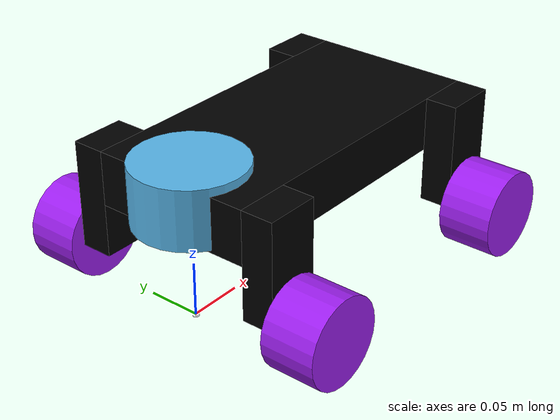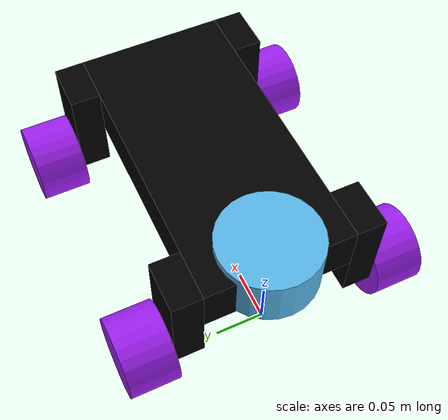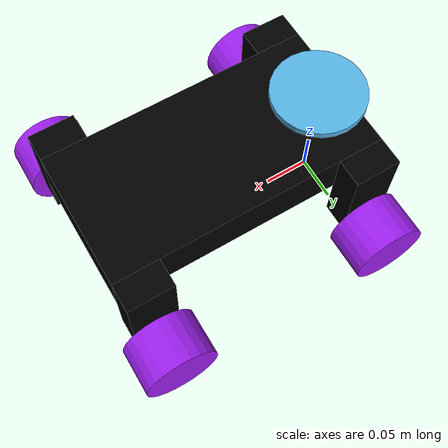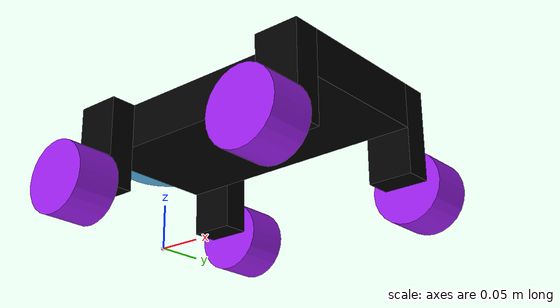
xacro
<?xml version="1.0"?>
<robot xmlns:xacro="http://ros.org/wiki/xacro" name="microver">

    <xacro:include filename="constants.xacro" />
    <xacro:include filename="inertial_macros.xacro" />
    <xacro:include filename="gazebo_control.xacro" />

    <material name="black">
        <color rgba="0 0 0 1" />
    </material>
    <material name="white">
        <color rgba="1 1 1 1" />
    </material>
    <material name="blue">
        <color rgba="0.2 0.2 1 1" />
    </material>

    <material name="purple">
        <color rgba="0.62 0.12 0.94 1" />
    </material>

    <!-- the base link located in the middle of the line between the center of both back wheels -->
    <link name="base_link">
        <visual>
            <geometry>
                <cylinder length="0.003" radius="0.003"/>
            </geometry>
            <origin xyz="0 0 0" rpy="0 0 0"/>
            <material name="white" />
        </visual>
    </link>

                    <!-- ####################### JOINTS ########################## -->

    <joint name="chassis_joint" type="fixed">
        <origin xyz="0 0 0" rpy="0 0 0" />
        <parent link="base_link" />
        <child link="chassis" />
    </joint>

                                        <!-- WHEEL JOINTS -->

    <joint name="front_left_wheel_joint" type="continuous">
        <origin xyz="${LENGTH - LEG_LENGTH} ${((WIDTH/2) + LEG_WIDTH + (WHEEL_WIDTH/2))} ${WHEEL_RADIUS}" rpy="-${pi/2} 0 0" />
        <parent link="base_link" />
        <child link="front_left_wheel_link" />
        <axis xyz="0 0 1"/>
        <limit effort="100" velocity="100"/>
        <dynamics damping="0.1" friction="0.1"/>
    </joint>

    <joint name="front_right_wheel_joint" type="continuous">
        <origin xyz="${LENGTH - LEG_LENGTH} ${-((WIDTH/2) + LEG_WIDTH + (WHEEL_WIDTH/2))} ${WHEEL_RADIUS}" rpy="${pi/2} 0 0" />
        <parent link="base_link" />
        <child link="front_right_wheel_link" />
        <axis xyz="0 0 -1"/>
        <limit effort="100" velocity="100"/>
        <dynamics damping="0.1" friction="0.1"/>
    </joint>

    <joint name="back_left_wheel_joint" type="continuous">
        <origin xyz="0 ${((WIDTH/2) + LEG_WIDTH + (WHEEL_WIDTH/2))} ${WHEEL_RADIUS}" rpy="-${pi/2} 0 0" />
        <parent link="base_link" />
        <child link="back_left_wheel_link" />
        <axis xyz="0 0 1"/>
        <limit effort="100" velocity="100"/>
        <dynamics damping="0.1" friction="0.1"/>
    </joint>

    <joint name="back_right_wheel_joint" type="continuous">
        <origin xyz="0 ${-((WIDTH/2) + LEG_WIDTH + (WHEEL_WIDTH/2))} ${WHEEL_RADIUS}" rpy="${pi/2} 0 0" />
        <parent link="base_link" />
        <child link="back_right_wheel_link" />
        <axis xyz="0 0 -1"/>
        <limit effort="100" velocity="100"/>
        <dynamics damping="0.1" friction="0.1"/>
    </joint>

                                <!-- LEG JOINTS = FIXED -->

    <joint name="back_left_leg_joint" type="fixed">
        <origin xyz="0 ${((WIDTH/2)+(LEG_WIDTH/2))} ${LEG_HEIGHT/2 + WHEEL_RADIUS}" rpy="0 0 0" />
        <parent link="base_link" />
        <child link="back_left_leg_link" />
    </joint>

    <joint name="back_right_leg_joint" type="fixed">
        <origin xyz="0 ${-((WIDTH/2)+(LEG_WIDTH/2))} ${LEG_HEIGHT/2 + WHEEL_RADIUS}" rpy="0 0 0" />
        <parent link="base_link" />
        <child link="back_right_leg_link" />
    </joint>

    <joint name="front_left_leg_joint" type="fixed">
        <origin xyz="${LENGTH - LEG_LENGTH} ${((WIDTH/2)+(LEG_WIDTH/2))} ${LEG_HEIGHT/2 + WHEEL_RADIUS}" rpy="0 0 0" />
        <parent link="base_link" />
        <child link="front_left_leg_link" />
    </joint>

    <joint name="front_right_leg_joint" type="fixed">
        <origin xyz="${LENGTH - LEG_LENGTH} ${-((WIDTH/2)+(LEG_WIDTH/2))} ${LEG_HEIGHT/2 + WHEEL_RADIUS}"
            rpy="0 0 0" />
        <parent link="base_link" />
        <child link="front_right_leg_link" />
    </joint>

                    <!-- ####################### LIDAR SETUP #################### -->

    <joint name="lidar_joint" type="fixed">
        <origin xyz="0 0 0.12" rpy="0 0 0" />
        <parent link="base_link" />
        <child link="lidar_link" />
    </joint>

                    <!-- ####################### LINKS ########################## -->
                     <!-- TODO: EDIT THE RANDOM ASS VALUES IN THE LIDAR LINK -->
    <link name="lidar_link">
    <inertial>
        <origin xyz="0 0 0" rpy="0 0 0"/>
        <mass value="0.125"/>
        <inertia ixx="0.001" ixy="0" ixz="0" iyy="0.001" iyz="0" izz="0.001" />
    </inertial>

    <collision>
        <origin xyz="0 0 0" rpy="0 0 0"/>
        <geometry>
        <cylinder radius="0.0508" length="0.055"/>
        </geometry>
    </collision>

    <visual>
        <origin xyz="0 0 0" rpy="0 0 0"/>
        <geometry>
        <cylinder radius="0.0508" length="0.055"/>
        </geometry>
    </visual>
    </link>

    <gazebo reference="lidar_link">
    <sensor name="lidar" type="ray">
        <always_on>true</always_on>
        <visualize>true</visualize>
        <update_rate>5</update_rate>
        <ray>
        <scan>
            <horizontal>
            <samples>360</samples>
            <resolution>1.000000</resolution>
            <min_angle>0.000000</min_angle>
            <max_angle>6.280000</max_angle>
            </horizontal>
        </scan>
        <range>
            <min>0.120000</min>
            <max>3.5</max>
            <resolution>0.015000</resolution>
        </range>
        <noise>
            <type>gaussian</type>
            <mean>0.0</mean>
            <stddev>0.01</stddev>
        </noise>
        </ray>
        <plugin name="scan" filename="libgazebo_ros_ray_sensor.so">
        <ros>
            <remapping>~/out:=scan</remapping>
        </ros>
        <output_type>sensor_msgs/LaserScan</output_type>
        <frame_name>lidar_link</frame_name>
        </plugin>
    </sensor>
    </gazebo>

    <link name="chassis">
        <visual>
            <geometry>
                <box size="${LENGTH} ${WIDTH} ${HEIGHT}" />
            </geometry>
            <origin xyz="${LENGTH/2 - LEG_LENGTH/2} 0 ${LEG_HEIGHT - HEIGHT/2 + WHEEL_RADIUS}" rpy="0 0 0"/>
            <material name="black" />
        </visual>
        <collision>
            <geometry>
                <box size="${LENGTH} ${WIDTH} ${HEIGHT}" />
            </geometry>
            <origin xyz="${LENGTH/2 - LEG_LENGTH/2} 0 ${LEG_HEIGHT - HEIGHT/2 + WHEEL_RADIUS}" rpy="0 0 0"/>
        </collision>
        <xacro:inertial_box mass="${MASS}" x="${LENGTH}" y="${WIDTH}" z="${HEIGHT}">
            <origin xyz="${LENGTH/2 - LEG_LENGTH/2} 0 ${LEG_HEIGHT - HEIGHT/2 + WHEEL_RADIUS}" rpy="0 0 0"/>
        </xacro:inertial_box>
    </link>

                                        <!-- LEG LINKS -->

    <!-- need to add inertias for the legs -->
    <link name="back_left_leg_link">
        <visual>
            <geometry>
                <box size="${LEG_LENGTH} ${LEG_WIDTH} ${LEG_HEIGHT}" />
            </geometry>
            <material name="black" />
        </visual>
        <collision>
            <geometry>
                <box size="${LEG_LENGTH} ${LEG_WIDTH} ${LEG_HEIGHT}" />
            </geometry>
        </collision>
        <xacro:inertial_box mass="${LEG_MASS}" x="${LEG_LENGTH}" y="${LEG_WIDTH}" z="${LEG_HEIGHT}">
            <origin xyz="0 0 0" />
        </xacro:inertial_box>
    </link>

    <link name="back_right_leg_link">
        <visual>
            <geometry>
                <box size="${LEG_LENGTH} ${LEG_WIDTH} ${LEG_HEIGHT}" />
            </geometry>
            <material name="black" />
        </visual>
        <collision>
            <geometry>
                <box size="${LEG_LENGTH} ${LEG_WIDTH} ${LEG_HEIGHT}" />
            </geometry>
        </collision>
        <xacro:inertial_box mass="${LEG_MASS}" x="${LEG_LENGTH}" y="${LEG_WIDTH}" z="${LEG_HEIGHT}">
            <origin xyz="0 0 0" />
        </xacro:inertial_box>
    </link>

    <link name="front_left_leg_link">
        <visual>
            <geometry>
                <box size="${LEG_LENGTH} ${LEG_WIDTH} ${LEG_HEIGHT}" />
            </geometry>
            <material name="black" />
        </visual>
        <collision>
            <geometry>
                <box size="${LEG_LENGTH} ${LEG_WIDTH} ${LEG_HEIGHT}" />
            </geometry>
        </collision>
        <xacro:inertial_box mass="${LEG_MASS}" x="${LEG_LENGTH}" y="${LEG_WIDTH}" z="${LEG_HEIGHT}">
            <origin xyz="0 0 0" />
        </xacro:inertial_box>

    </link>

    <link name="front_right_leg_link">
        <visual>
            <geometry>
                <box size="${LEG_LENGTH} ${LEG_WIDTH} ${LEG_HEIGHT}" />
            </geometry>
            <material name="black" />
        </visual>
        <collision>
            <geometry>
                <box size="${LEG_LENGTH} ${LEG_WIDTH} ${LEG_HEIGHT}" />
            </geometry>
        </collision>
        <xacro:inertial_box mass="${LEG_MASS}" x="${LEG_LENGTH}" y="${LEG_WIDTH}" z="${LEG_HEIGHT}">
            <origin xyz="0 0 0" />
        </xacro:inertial_box>
    </link>

                                        <!-- WHEEL LINKS -->

    <link name="front_left_wheel_link">
        <visual>
            <geometry>
                <cylinder radius="${WHEEL_RADIUS}" length="${WHEEL_WIDTH}" />
            </geometry>
            <material name="purple" />
        </visual>
        <collision>
            <geometry>
                <cylinder radius="${WHEEL_RADIUS}" length="${WHEEL_WIDTH}" />
            </geometry>
        </collision>
        <xacro:inertial_cylinder mass="${WHEEL_MASS}" length="${WHEEL_WIDTH}" radius="${WHEEL_RADIUS}">
            <origin xyz="0 0 0"/>
        </xacro:inertial_cylinder>
    </link>

    <link name="front_right_wheel_link">
        <visual>
            <geometry>
                <cylinder radius="${WHEEL_RADIUS}" length="${WHEEL_WIDTH}" />
            </geometry>
            <material name="purple" />
        </visual>
        <collision>
            <geometry>
                <cylinder radius="${WHEEL_RADIUS}" length="${WHEEL_WIDTH}" />
            </geometry>
        </collision>
        <xacro:inertial_cylinder mass="${WHEEL_MASS}" length="${WHEEL_WIDTH}" radius="${WHEEL_RADIUS}">
            <origin xyz="0 0 0"/>
        </xacro:inertial_cylinder>
    </link>

    <link name="back_left_wheel_link">
        <visual>
            <geometry>
                <cylinder radius="${WHEEL_RADIUS}" length="${WHEEL_WIDTH}" />
            </geometry>
            <material name="purple" />
        </visual>
        <collision>
            <geometry>
                <cylinder radius="${WHEEL_RADIUS}" length="${WHEEL_WIDTH}" />
            </geometry>
        </collision>
        <xacro:inertial_cylinder mass="${WHEEL_MASS}" length="${WHEEL_WIDTH}" radius="${WHEEL_RADIUS}">
            <origin xyz="0 0 0"/>
        </xacro:inertial_cylinder>
    </link>

    <link name="back_right_wheel_link">
        <visual>
            <geometry>
                <cylinder radius="${WHEEL_RADIUS}" length="${WHEEL_WIDTH}" />
            </geometry>
            <material name="purple" />
        </visual>
        <collision>
            <geometry>
                <cylinder radius="${WHEEL_RADIUS}" length="${WHEEL_WIDTH}" />
            </geometry>
        </collision>
        <xacro:inertial_cylinder mass="${WHEEL_MASS}" length="${WHEEL_WIDTH}" radius="${WHEEL_RADIUS}">
            <origin xyz="0 0 0"/>
        </xacro:inertial_cylinder>
    </link>

                                                <!-- Gazebo -->

    <gazebo reference="chassis">
        <material>Gazebo/Black</material>
    </gazebo>

    <gazebo reference="back_left_leg_link">
        <material>Gazebo/Black</material>
    </gazebo>

    <gazebo reference="back_right_leg_link">
        <material>Gazebo/Black</material>
    </gazebo>

    <gazebo reference="front_left_leg_link">
        <material>Gazebo/Black</material>
    </gazebo>

    <gazebo reference="front_right_leg_link">
        <material>Gazebo/Black</material>
    </gazebo>

    <gazebo reference="front_left_wheel_link">
        <material>Gazebo/Purple</material>
        <mu1 value="${MU1}" />
        <mu2 value="${MU2}" />
    </gazebo>

    <gazebo reference="front_right_wheel_link">
        <material>Gazebo/Purple</material>
        <mu1 value="${MU1}" />
        <mu2 value="${MU2}" />
    </gazebo>

    <gazebo reference="back_left_wheel_link">
        <material>Gazebo/Purple</material>
        <mu1 value="${MU1}" />
        <mu2 value="${MU2}" />
    </gazebo>

    <gazebo reference="back_right_wheel_link">
        <material>Gazebo/Purple</material>
        <mu1 value="${MU1}" />
        <mu2 value="${MU2}" />
    </gazebo>

    <!-- ################## LIDAR  ################### -->

</robot>

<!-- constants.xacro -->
<robot xmlns:xacro="http://ros.org/wiki/xacro">

    <!-- speeds are in m/2 or rad/s, dimensions in m, weights in kg -->

    <xacro:property name="MAX_SPEED"    value="5.5"  />
    <xacro:property name="MIN_SPEED"    value="0.0"  />

    <xacro:property name="WHEEL_RADIUS" value="0.04" />
    <xacro:property name="WHEEL_WIDTH"  value="0.05"  />
    <xacro:property name="WHEELBASE"    value="0.5"  />
    <xacro:property name="WHEEL_MASS"   value="0.45"  />

    <xacro:property name="HEIGHT"       value="0.05" />
    <xacro:property name="LENGTH"       value="0.3"  />
    <xacro:property name="WIDTH"        value="0.15" />
    <xacro:property name="MASS"         value="3"    />

    <xacro:property name="LEG_WIDTH"    value="0.03" />
    <xacro:property name="LEG_HEIGHT"   value="0.1"  />
    <xacro:property name="LEG_LENGTH"   value="0.05" />
    <xacro:property name="LEG_MASS"     value="0.1"  />

    <xacro:property name="MU1"     value="0.3"  />
    <xacro:property name="MU2"     value="0.3"  />
</robot>

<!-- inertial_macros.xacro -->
<robot xmlns:xacro="http://www.ros.org/wiki/xacro" >
    <!-- ALL CREDITS GO TO JOSH NEWANS OF ARTICULATED ROBOTICS -->
    <!-- Specify some standard inertial calculations https://en.wikipedia.org/wiki/List_of_moments_of_inertia -->
    <!-- These make use of xacro's mathematical functionality -->

    <xacro:macro name="inertial_sphere" params="mass radius *origin">
        <inertial>
            <xacro:insert_block name="origin"/>
            <mass value="${mass}" />
            <inertia ixx="${(2/5) * mass * (radius*radius)}" ixy="0.0" ixz="0.0"
                    iyy="${(2/5) * mass * (radius*radius)}" iyz="0.0"
                    izz="${(2/5) * mass * (radius*radius)}" />
        </inertial>
    </xacro:macro>

    <xacro:macro name="inertial_box" params="mass x y z *origin">
        <inertial>
            <xacro:insert_block name="origin"/>
            <mass value="${mass}" />
            <inertia ixx="${(1/12) * mass * (y*y+z*z)}" ixy="0.0" ixz="0.0"
                    iyy="${(1/12) * mass * (x*x+z*z)}" iyz="0.0"
                    izz="${(1/12) * mass * (x*x+y*y)}" />
        </inertial>
    </xacro:macro>

    <xacro:macro name="inertial_cylinder" params="mass length radius *origin">
        <inertial>
            <xacro:insert_block name="origin"/>
            <mass value="${mass}" />
            <inertia ixx="${(1/12) * mass * (3*radius*radius + length*length)}" ixy="0.0" ixz="0.0"
                    iyy="${(1/12) * mass * (3*radius*radius + length*length)}" iyz="0.0"
                    izz="${(1/2) * mass * (radius*radius)}" />
        </inertial>
    </xacro:macro>

</robot>
